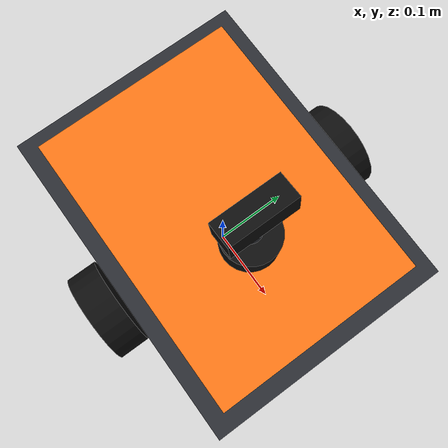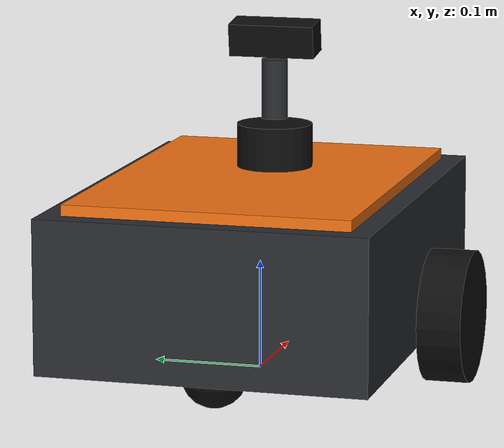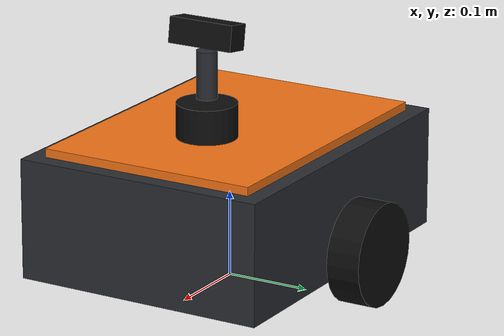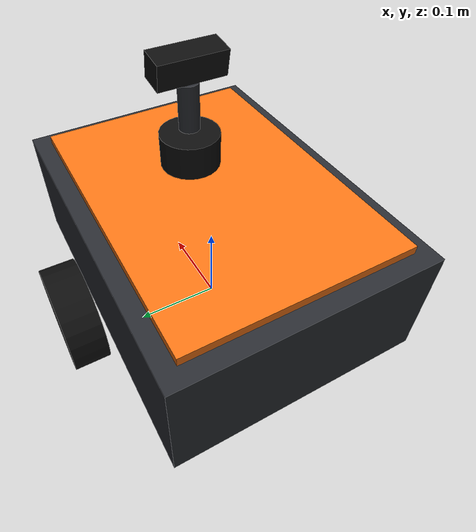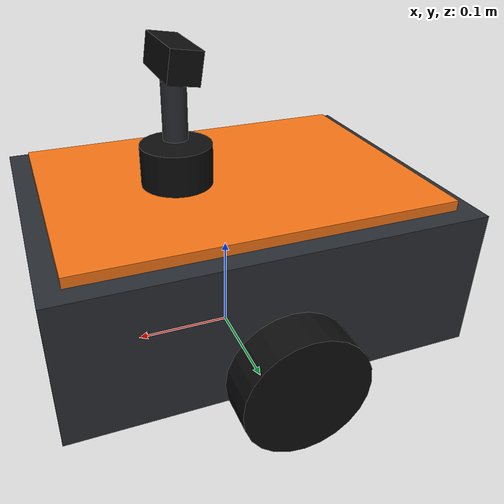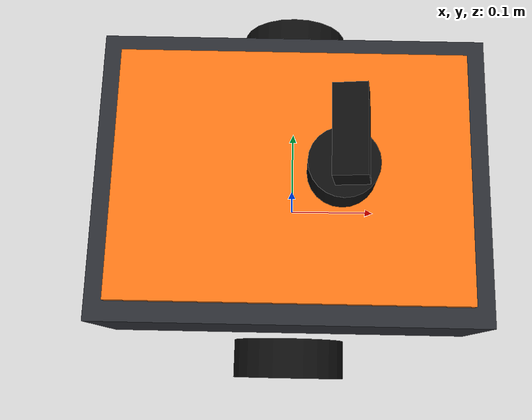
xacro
<?xml version="1.0"?>
<robot name="semmal_robot" xmlns:xacro="http://www.ros.org/wiki/xacro">

  <xacro:arg name="model_name" default="semmal"/>
  <xacro:property name="model_name" value="$(arg model_name)"/>
  <!-- Body style: rover (warehouse), cleaner (house), field (forest). Visual only: the collision box,
       wheels, sensors, mass and limits are identical for all three, so safety and plant models hold. -->
  <xacro:arg name="variant" default="rover"/>
  <xacro:property name="variant" value="$(arg variant)"/>

  <!-- Geometry -->
  <xacro:property name="wheel_radius" value="0.06"/>
  <xacro:property name="wheel_width" value="0.04"/>
  <xacro:property name="wheel_separation" value="0.36"/>
  <xacro:property name="base_x" value="0.40"/>
  <xacro:property name="base_y" value="0.30"/>
  <xacro:property name="base_z" value="0.14"/>
  <xacro:property name="base_z_offset" value="0.04"/> <!-- base box centre above axle -->
  <xacro:property name="caster_radius" value="0.03"/>
  <xacro:property name="caster_x" value="0.15"/>
  <xacro:property name="com_x" value="-0.04"/> <!-- CoM behind the axle: wheels carry most of the load -->

  <!-- Mass -->
  <xacro:property name="base_mass" value="8.0"/>
  <xacro:property name="wheel_mass" value="0.5"/>
  <xacro:property name="caster_mass" value="0.1"/>

  <!-- Limits (also enforced by safety_supervisor; these are the plant's hard caps) -->
  <xacro:property name="max_linear_velocity" value="0.8"/>
  <xacro:property name="max_angular_velocity" value="2.0"/>

  <xacro:macro name="box_inertia" params="m x y z">
    <inertia ixx="${m*(y*y+z*z)/12}" ixy="0" ixz="0" iyy="${m*(x*x+z*z)/12}" iyz="0" izz="${m*(x*x+y*y)/12}"/>
  </xacro:macro>
  <xacro:macro name="cylinder_inertia" params="m r h">
    <inertia ixx="${m*(3*r*r+h*h)/12}" ixy="0" ixz="0" iyy="${m*(3*r*r+h*h)/12}" iyz="0" izz="${m*r*r/2}"/>
  </xacro:macro>
  <xacro:macro name="sphere_inertia" params="m r">
    <inertia ixx="${2*m*r*r/5}" ixy="0" ixz="0" iyy="${2*m*r*r/5}" iyz="0" izz="${2*m*r*r/5}"/>
  </xacro:macro>

  <material name="graphite"><color rgba="0.16 0.17 0.19 1"/></material>
  <material name="safety_orange"><color rgba="0.95 0.45 0.08 1"/></material>
  <material name="black"><color rgba="0.05 0.05 0.05 1"/></material>
  <material name="appliance_white"><color rgba="0.92 0.93 0.94 1"/></material>
  <material name="sky_blue"><color rgba="0.25 0.60 0.90 1"/></material>
  <material name="olive"><color rgba="0.33 0.38 0.22 1"/></material>
  <material name="beacon_amber"><color rgba="1.0 0.65 0.0 1"/></material>

  <link name="base_footprint"/>

  <link name="base_link">
    <xacro:if value="${variant == 'rover'}">
      <visual>
        <origin xyz="0 0 ${base_z_offset}"/>
        <geometry><box size="${base_x} ${base_y} ${base_z}"/></geometry>
        <material name="graphite"/>
      </visual>
      <visual>
        <origin xyz="0 0 ${base_z_offset + base_z/2 + 0.005}"/>
        <geometry><box size="${base_x - 0.04} ${base_y - 0.04} 0.01"/></geometry>
        <material name="safety_orange"/>
      </visual>
    </xacro:if>
    <xacro:if value="${variant == 'cleaner'}">
      <!-- round home-cleaning robot: low white disc, blue bumper ring, brush plate -->
      <visual>
        <origin xyz="0 0 ${base_z_offset - 0.01}"/>
        <geometry><cylinder radius="${base_x/2}" length="${base_z - 0.04}"/></geometry>
        <material name="appliance_white"/>
      </visual>
      <visual>
        <origin xyz="0 0 ${base_z_offset - 0.03}"/>
        <geometry><cylinder radius="${base_x/2 + 0.008}" length="0.025"/></geometry>
        <material name="sky_blue"/>
      </visual>
      <visual>
        <origin xyz="0 0 ${base_z_offset + (base_z - 0.04)/2 - 0.004}"/>
        <geometry><cylinder radius="${base_x/2 - 0.06}" length="0.01"/></geometry>
        <material name="graphite"/>
      </visual>
    </xacro:if>
    <xacro:if value="${variant == 'field'}">
      <!-- rugged field rover: olive hull, roll bar, amber beacon -->
      <visual>
        <origin xyz="0 0 ${base_z_offset}"/>
        <geometry><box size="${base_x} ${base_y} ${base_z}"/></geometry>
        <material name="olive"/>
      </visual>
      <visual>
        <origin xyz="-0.12 0 ${base_z_offset + base_z/2 + 0.07}"/>
        <geometry><box size="0.03 ${base_y} 0.14"/></geometry>
        <material name="black"/>
      </visual>
      <visual>
        <origin xyz="-0.12 0 ${base_z_offset + base_z/2 + 0.16}"/>
        <geometry><cylinder radius="0.03" length="0.04"/></geometry>
        <material name="beacon_amber"/>
      </visual>
    </xacro:if>
    <collision>
      <origin xyz="0 0 ${base_z_offset}"/>
      <geometry><box size="${base_x} ${base_y} ${base_z}"/></geometry>
    </collision>
    <inertial>
      <origin xyz="${com_x} 0 ${base_z_offset}"/>
      <mass value="${base_mass}"/>
      <xacro:box_inertia m="${base_mass}" x="${base_x}" y="${base_y}" z="${base_z}"/>
    </inertial>
  </link>

  <joint name="base_footprint_joint" type="fixed">
    <parent link="base_footprint"/>
    <child link="base_link"/>
    <origin xyz="0 0 ${wheel_radius}"/>
  </joint>

  <!-- Drive wheels -->
  <xacro:macro name="wheel" params="side y">
    <link name="${side}_wheel_link">
      <visual>
        <origin rpy="${-pi/2} 0 0"/>
        <geometry><cylinder radius="${wheel_radius}" length="${wheel_width}"/></geometry>
        <material name="black"/>
      </visual>
      <!-- Sphere collision: one contact point at the true track width. A cylinder's edge
           contacts made the effective track ~0.32 m and odometry under-reported yaw by ~10%. -->
      <collision>
        <geometry><sphere radius="${wheel_radius}"/></geometry>
      </collision>
      <inertial>
        <origin rpy="${-pi/2} 0 0"/>
        <mass value="${wheel_mass}"/>
        <xacro:cylinder_inertia m="${wheel_mass}" r="${wheel_radius}" h="${wheel_width}"/>
      </inertial>
    </link>
    <joint name="${side}_wheel_joint" type="continuous">
      <parent link="base_link"/>
      <child link="${side}_wheel_link"/>
      <origin xyz="0 ${y} 0"/>
      <axis xyz="0 1 0"/>
    </joint>
    <gazebo reference="${side}_wheel_link">
      <mu1>1.0</mu1>
      <mu2>1.0</mu2>
    </gazebo>
  </xacro:macro>
  <xacro:wheel side="left" y="${wheel_separation/2}"/>
  <xacro:wheel side="right" y="${-wheel_separation/2}"/>

  <!-- One passive rear caster (frictionless sphere). Two wheels + one caster keeps the contact
       statically determinate; a four-point contact let the wheels unload and slip when turning. -->
  <xacro:macro name="caster" params="name x">
    <link name="${name}_caster_link">
      <visual><geometry><sphere radius="${caster_radius}"/></geometry><material name="black"/></visual>
      <collision><geometry><sphere radius="${caster_radius}"/></geometry></collision>
      <inertial><mass value="${caster_mass}"/><xacro:sphere_inertia m="${caster_mass}" r="${caster_radius}"/></inertial>
    </link>
    <joint name="${name}_caster_joint" type="fixed">
      <parent link="base_link"/>
      <child link="${name}_caster_link"/>
      <origin xyz="${x} 0 ${caster_radius - wheel_radius}"/>
    </joint>
    <gazebo reference="${name}_caster_link">
      <mu1>0.0</mu1>
      <mu2>0.0</mu2>
    </gazebo>
  </xacro:macro>
  <xacro:caster name="rear" x="${-caster_x}"/>

  <!-- 2D lidar -->
  <link name="base_scan">
    <visual>
      <geometry><cylinder radius="0.035" length="0.04"/></geometry>
      <material name="black"/>
    </visual>
    <inertial><mass value="0.1"/><xacro:cylinder_inertia m="0.1" r="0.035" h="0.04"/></inertial>
  </link>
  <joint name="base_scan_joint" type="fixed">
    <parent link="base_link"/>
    <child link="base_scan"/>
    <origin xyz="0.05 0 ${base_z_offset + base_z/2 + 0.03}"/>
  </joint>
  <gazebo reference="base_scan">
    <sensor name="lidar" type="gpu_lidar">
      <gz_frame_id>base_scan</gz_frame_id>
      <topic>/scan</topic>
      <update_rate>10</update_rate>
      <always_on>true</always_on>
      <visualize>false</visualize>
      <lidar>
        <scan>
          <horizontal>
            <samples>360</samples>
            <resolution>1</resolution>
            <min_angle>-3.14159</min_angle>
            <max_angle>3.14159</max_angle>
          </horizontal>
          <vertical><samples>1</samples><min_angle>0</min_angle><max_angle>0</max_angle></vertical>
        </scan>
        <range><min>0.12</min><max>12.0</max><resolution>0.01</resolution></range>
        <noise><type>gaussian</type><mean>0.0</mean><stddev>0.005</stddev></noise>
      </lidar>
    </sensor>
  </gazebo>

  <!-- RGB camera (optical frame follows REP-103: z forward, x right, y down) -->
  <xacro:property name="cam_h" value="${0.45 if variant == 'cleaner' else (0.50 if variant == 'field' else 0.30)}"/>
  <xacro:property name="cam_pitch" value="${0.35 if variant == 'cleaner' else (0.12 if variant == 'field' else -0.15)}"/>
  <xacro:property name="cam_x" value="0.05"/>
  <xacro:property name="mast_bottom" value="${base_z_offset + base_z/2 + 0.03 + 0.025}"/>
  <xacro:property name="mast_top" value="${cam_h - wheel_radius - 0.02}"/>
  <link name="camera_mast">
    <visual>
      <origin xyz="0 0 ${(mast_top - mast_bottom)/2}"/>
      <geometry><cylinder radius="0.012" length="${mast_top - mast_bottom}"/></geometry>
      <material name="graphite"/>
    </visual>
    <inertial><mass value="0.05"/><xacro:cylinder_inertia m="0.05" r="0.012" h="${mast_top - mast_bottom}"/></inertial>
  </link>
  <joint name="camera_mast_joint" type="fixed">
    <parent link="base_link"/>
    <child link="camera_mast"/>
    <origin xyz="${cam_x} 0 ${mast_bottom}"/>
  </joint>

  <link name="camera_link">
    <visual>
      <geometry><box size="0.03 0.08 0.03"/></geometry>
      <material name="black"/>
    </visual>
    <inertial><mass value="0.05"/><xacro:box_inertia m="0.05" x="0.03" y="0.08" z="0.03"/></inertial>
  </link>
  <joint name="camera_joint" type="fixed">
    <parent link="base_link"/>
    <child link="camera_link"/>
    <origin xyz="${cam_x} 0 ${cam_h - wheel_radius}" rpy="0 ${cam_pitch} 0"/>
  </joint>
  <link name="camera_optical_frame"/>
  <joint name="camera_optical_joint" type="fixed">
    <parent link="camera_link"/>
    <child link="camera_optical_frame"/>
    <origin rpy="${-pi/2} 0 ${-pi/2}"/>
  </joint>
  <gazebo reference="camera_link">
    <sensor name="camera" type="camera">
      <gz_frame_id>camera_optical_frame</gz_frame_id>
      <topic>/camera/image_raw</topic>
      <update_rate>15</update_rate>
      <always_on>true</always_on>
      <camera>
        <camera_info_topic>/camera/camera_info</camera_info_topic>
        <horizontal_fov>1.2</horizontal_fov>
        <image><width>640</width><height>480</height><format>R8G8B8</format></image>
        <clip><near>0.05</near><far>30.0</far></clip>
      </camera>
    </sensor>
  </gazebo>

  <!-- IMU -->
  <link name="imu_link">
    <inertial><mass value="0.01"/><xacro:box_inertia m="0.01" x="0.02" y="0.02" z="0.01"/></inertial>
  </link>
  <joint name="imu_joint" type="fixed">
    <parent link="base_link"/>
    <child link="imu_link"/>
    <origin xyz="0 0 ${base_z_offset}"/>
  </joint>
  <gazebo reference="imu_link">
    <sensor name="imu" type="imu">
      <gz_frame_id>imu_link</gz_frame_id>
      <topic>/imu/data</topic>
      <update_rate>100</update_rate>
      <always_on>true</always_on>
    </sensor>
  </gazebo>

  <!-- Differential drive (gz-sim 8 DiffDrive system). Publishes odom and odom->base_footprint TF. -->
  <gazebo>
    <plugin filename="gz-sim-diff-drive-system" name="gz::sim::systems::DiffDrive">
      <left_joint>left_wheel_joint</left_joint>
      <right_joint>right_wheel_joint</right_joint>
      <wheel_separation>${wheel_separation}</wheel_separation>
      <wheel_radius>${wheel_radius}</wheel_radius>
      <max_linear_velocity>${max_linear_velocity}</max_linear_velocity>
      <min_linear_velocity>${-max_linear_velocity}</min_linear_velocity>
      <max_angular_velocity>${max_angular_velocity}</max_angular_velocity>
      <min_angular_velocity>${-max_angular_velocity}</min_angular_velocity>
      <max_linear_acceleration>1.0</max_linear_acceleration>
      <min_linear_acceleration>-2.0</min_linear_acceleration>
      <max_angular_acceleration>3.0</max_angular_acceleration>
      <min_angular_acceleration>-3.0</min_angular_acceleration>
      <topic>/model/${model_name}/cmd_vel</topic>
      <odom_topic>/model/${model_name}/odometry</odom_topic>
      <tf_topic>/model/${model_name}/tf</tf_topic>
      <frame_id>odom</frame_id>
      <child_frame_id>base_footprint</child_frame_id>
      <odom_publish_frequency>50</odom_publish_frequency>
    </plugin>
    <plugin filename="gz-sim-joint-state-publisher-system" name="gz::sim::systems::JointStatePublisher">
      <topic>/model/${model_name}/joint_states</topic>
      <!-- Default is every physics step (1 kHz). motor_sim republishes encoders at 50 Hz, so 100 Hz is plenty
           and keeps the Python node from spending most of a core parsing joint states. -->
      <update_rate>100</update_rate>
      <joint_name>left_wheel_joint</joint_name>
      <joint_name>right_wheel_joint</joint_name>
    </plugin>
  </gazebo>
</robot>
